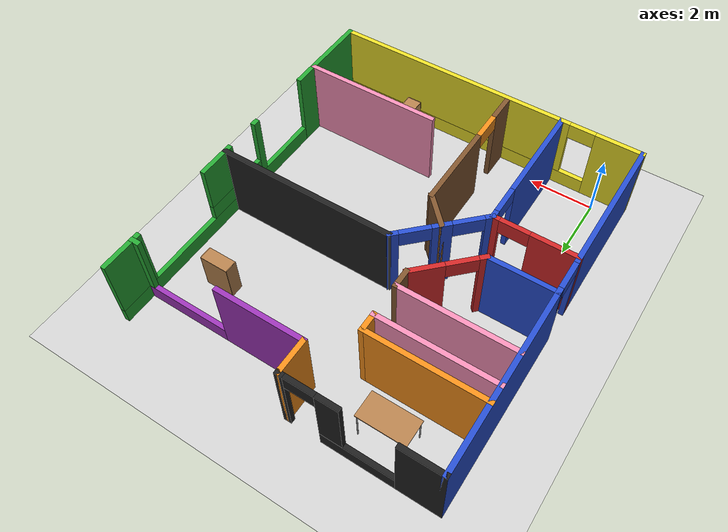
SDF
<sdf version="1.6">
 <world name="default">
  <light name="sun" type="directional">
   <pose>0 0 10 0 -0 0</pose>
   <diffuse>0.8 0.8 0.8 1</diffuse>
   <specular>0.2 0.2 0.2 1</specular>
   <attenuation>
    <range>1000</range>
    <constant>0.9</constant>
    <linear>0.01</linear>
    <quadratic>0.001</quadratic>
   </attenuation>
   <direction>-0.5 0.1 -0.9</direction>
  </light>
  <model name="ground_plane">
   <static>1</static>
   <link name="link">
    <collision name="collision">
     <geometry><plane><normal>0 0 1</normal><size>100 100</size></plane></geometry>
     <surface>
      <contact><collide_bitmask>65535</collide_bitmask></contact>
      <friction><ode><mu>100</mu><mu2>50</mu2></ode></friction>
     </surface>
    </collision>
    <visual name="visual">
     <cast_shadows>0</cast_shadows>
     <geometry><plane><normal>0 0 1</normal><size>100 100</size></plane></geometry>
     <material>
      <script><uri>file://media/materials/scripts/gazebo.material</uri><name>Gazebo/Grey</name></script>
     </material>
    </visual>
   </link>
  </model>
  <gravity>0 0 -9.8</gravity>
  <magnetic_field>6e-06 2.3e-05 -4.2e-05</magnetic_field>
  <atmosphere type="adiabatic"/>
  <physics name="default_physics" default="0" type="ode">
   <max_step_size>0.001</max_step_size>
   <real_time_factor>1</real_time_factor>
   <real_time_update_rate>1000</real_time_update_rate>
  </physics>
  <scene><ambient>0.4 0.4 0.4 1</ambient><background>0.7 0.7 0.7 1</background><shadows>1</shadows></scene>
  <audio><device>default</device></audio>
  <spherical_coordinates>
   <surface_model>EARTH_WGS84</surface_model>
   <latitude_deg>0</latitude_deg>
   <longitude_deg>0</longitude_deg>
   <elevation>0</elevation>
   <heading_deg>0</heading_deg>
  </spherical_coordinates>
  <model name="home">
   <pose>4.13777 5.03484 0 0 -0 0</pose>
   <link name="Wall_12">
    <pose>5 -0 0 0 -0 1.5708</pose>
    <visual name="Wall_12_Visual_0">
     <pose>-4.14478 0 1.25 0 -0 0</pose>
     <geometry><box><size>2.86043 0.15 2.5</size></box></geometry>
     <material>
      <script><uri>file://media/materials/scripts/gazebo.material</uri><name>Gazebo/Green</name></script>
      <ambient>0.921569 0.807843 0.615686 1</ambient>
     </material>
     <meta><layer>0</layer></meta>
    </visual>
    <collision name="Wall_12_Collision_0">
     <geometry><box><size>2.86043 0.15 2.5</size></box></geometry>
     <pose>-4.14478 0 1.25 0 -0 0</pose>
    </collision>
    <visual name="Wall_12_Visual_1">
     <pose>1.43022 0 0.25 0 -0 0</pose>
     <geometry><box><size>8.28957 0.15 0.5</size></box></geometry>
     <material>
      <script><uri>file://media/materials/scripts/gazebo.material</uri><name>Gazebo/Green</name></script>
      <ambient>0.921569 0.807843 0.615686 1</ambient>
     </material>
     <meta><layer>0</layer></meta>
    </visual>
    <collision name="Wall_12_Collision_1">
     <geometry><box><size>8.28957 0.15 0.5</size></box></geometry>
     <pose>1.43022 0 0.25 0 -0 0</pose>
    </collision>
    <visual name="Wall_12_Visual_2">
     <pose>-0.595004 0 1.5 0 -0 0</pose>
     <geometry><box><size>0.23913 0.15 2</size></box></geometry>
     <material>
      <script><uri>file://media/materials/scripts/gazebo.material</uri><name>Gazebo/Green</name></script>
      <ambient>0.921569 0.807843 0.615686 1</ambient>
     </material>
     <meta><layer>0</layer></meta>
    </visual>
    <collision name="Wall_12_Collision_2">
     <geometry><box><size>0.23913 0.15 2</size></box></geometry>
     <pose>-0.595004 0 1.5 0 -0 0</pose>
    </collision>
    <visual name="Wall_12_Visual_3">
     <pose>4.9125 0 1.5 0 -0 0</pose>
     <geometry><box><size>1.325 0.15 2</size></box></geometry>
     <material>
      <script><uri>file://media/materials/scripts/gazebo.material</uri><name>Gazebo/Green</name></script>
      <ambient>0.921569 0.807843 0.615686 1</ambient>
     </material>
     <meta><layer>0</layer></meta>
    </visual>
    <collision name="Wall_12_Collision_3">
     <geometry><box><size>1.325 0.15 2</size></box></geometry>
     <pose>4.9125 0 1.5 0 -0 0</pose>
    </collision>
    <visual name="Wall_12_Visual_4">
     <pose>0.637281 0 0.75 0 -0 0</pose>
     <geometry><box><size>2.22544 0.15 0.5</size></box></geometry>
     <material>
      <script><uri>file://media/materials/scripts/gazebo.material</uri><name>Gazebo/Green</name></script>
      <ambient>0.921569 0.807843 0.615686 1</ambient>
     </material>
     <meta><layer>0</layer></meta>
    </visual>
    <collision name="Wall_12_Collision_4">
     <geometry><box><size>2.22544 0.15 0.5</size></box></geometry>
     <pose>0.637281 0 0.75 0 -0 0</pose>
    </collision>
    <visual name="Wall_12_Visual_5">
     <pose>1.13728 0 1.75 0 -0 0</pose>
     <geometry><box><size>1.22544 0.15 1.5</size></box></geometry>
     <material>
      <script><uri>file://media/materials/scripts/gazebo.material</uri><name>Gazebo/Green</name></script>
      <ambient>0.921569 0.807843 0.615686 1</ambient>
     </material>
     <meta><layer>0</layer></meta>
    </visual>
    <collision name="Wall_12_Collision_5">
     <geometry><box><size>1.22544 0.15 1.5</size></box></geometry>
     <pose>1.13728 0 1.75 0 -0 0</pose>
    </collision>
   </link>
   <link name="Wall_14">
    <pose>-2.75 5.5 0 0 -0 0</pose>
    <visual name="Wall_14_Visual_0">
     <pose>-1.6625 0 1.25 0 -0 0</pose>
     <geometry><box><size>1.325 0.15 2.5</size></box></geometry>
     <material>
      <script><uri>file://media/materials/scripts/gazebo.material</uri><name>Gazebo/Black</name></script>
      <ambient>0.921569 0.807843 0.615686 1</ambient>
     </material>
     <meta><layer>0</layer></meta>
    </visual>
    <collision name="Wall_14_Collision_0">
     <geometry><box><size>1.325 0.15 2.5</size></box></geometry>
     <pose>-1.6625 0 1.25 0 -0 0</pose>
    </collision>
    <visual name="Wall_14_Visual_1">
     <pose>2.20662 0 1.25 0 -0 0</pose>
     <geometry><box><size>0.236762 0.15 2.5</size></box></geometry>
     <material>
      <script><uri>file://media/materials/scripts/gazebo.material</uri><name>Gazebo/Black</name></script>
      <ambient>0.921569 0.807843 0.615686 1</ambient>
     </material>
     <meta><layer>0</layer></meta>
    </visual>
    <collision name="Wall_14_Collision_1">
     <geometry><box><size>0.236762 0.15 2.5</size></box></geometry>
     <pose>2.20662 0 1.25 0 -0 0</pose>
    </collision>
    <visual name="Wall_14_Visual_2">
     <pose>0.094119 0 0.25 0 -0 0</pose>
     <geometry><box><size>2.18824 0.15 0.5</size></box></geometry>
     <material>
      <script><uri>file://media/materials/scripts/gazebo.material</uri><name>Gazebo/Black</name></script>
      <ambient>0.921569 0.807843 0.615686 1</ambient>
     </material>
     <meta><layer>0</layer></meta>
    </visual>
    <collision name="Wall_14_Collision_2">
     <geometry><box><size>2.18824 0.15 0.5</size></box></geometry>
     <pose>0.094119 0 0.25 0 -0 0</pose>
    </collision>
    <visual name="Wall_14_Visual_3">
     <pose>0.844119 0 1.5 0 -0 0</pose>
     <geometry><box><size>0.688238 0.15 2</size></box></geometry>
     <material>
      <script><uri>file://media/materials/scripts/gazebo.material</uri><name>Gazebo/Black</name></script>
      <ambient>0.921569 0.807843 0.615686 1</ambient>
     </material>
     <meta><layer>0</layer></meta>
    </visual>
    <collision name="Wall_14_Collision_3">
     <geometry><box><size>0.688238 0.15 2</size></box></geometry>
     <pose>0.844119 0 1.5 0 -0 0</pose>
    </collision>
    <visual name="Wall_14_Visual_4">
     <pose>1.63824 0 2.25 0 -0 0</pose>
     <geometry><box><size>0.9 0.15 0.5</size></box></geometry>
     <material>
      <script><uri>file://media/materials/scripts/gazebo.material</uri><name>Gazebo/Black</name></script>
      <ambient>0.921569 0.807843 0.615686 1</ambient>
     </material>
     <meta><layer>0</layer></meta>
    </visual>
    <collision name="Wall_14_Collision_4">
     <geometry><box><size>0.9 0.15 0.5</size></box></geometry>
     <pose>1.63824 0 2.25 0 -0 0</pose>
    </collision>
   </link>
   <link name="Wall_16">
    <pose>-0 -5.5 0 0 -0 0</pose>
    <visual name="Wall_16_Visual_0">
     <pose>-4.32369 0 1.25 0 -0 0</pose>
     <geometry><box><size>1.50261 0.15 2.5</size></box></geometry>
     <material>
      <script><uri>file://media/materials/scripts/gazebo.material</uri><name>Gazebo/Yellow</name></script>
      <ambient>0.921569 0.807843 0.615686 1</ambient>
     </material>
     <meta><layer>0</layer></meta>
    </visual>
    <collision name="Wall_16_Collision_0">
     <geometry><box><size>1.50261 0.15 2.5</size></box></geometry>
     <pose>-4.32369 0 1.25 0 -0 0</pose>
    </collision>
    <visual name="Wall_16_Visual_1">
     <pose>0.751305 0 0.25 0 -0 0</pose>
     <geometry><box><size>8.64739 0.15 0.5</size></box></geometry>
     <material>
      <script><uri>file://media/materials/scripts/gazebo.material</uri><name>Gazebo/Yellow</name></script>
      <ambient>0.921569 0.807843 0.615686 1</ambient>
     </material>
     <meta><layer>0</layer></meta>
    </visual>
    <collision name="Wall_16_Collision_1">
     <geometry><box><size>8.64739 0.15 0.5</size></box></geometry>
     <pose>0.751305 0 0.25 0 -0 0</pose>
    </collision>
    <visual name="Wall_16_Visual_2">
     <pose>1.15131 0 1.5 0 -0 0</pose>
     <geometry><box><size>7.84739 0.15 2</size></box></geometry>
     <material>
      <script><uri>file://media/materials/scripts/gazebo.material</uri><name>Gazebo/Yellow</name></script>
      <ambient>0.921569 0.807843 0.615686 1</ambient>
     </material>
     <meta><layer>0</layer></meta>
    </visual>
    <collision name="Wall_16_Collision_2">
     <geometry><box><size>7.84739 0.15 2</size></box></geometry>
     <pose>1.15131 0 1.5 0 -0 0</pose>
    </collision>
    <visual name="Wall_16_Visual_3">
     <pose>-3.17239 0 2.25 0 -0 0</pose>
     <geometry><box><size>0.8 0.15 0.5</size></box></geometry>
     <material>
      <script><uri>file://media/materials/scripts/gazebo.material</uri><name>Gazebo/Yellow</name></script>
      <ambient>0.921569 0.807843 0.615686 1</ambient>
     </material>
     <meta><layer>0</layer></meta>
    </visual>
    <collision name="Wall_16_Collision_3">
     <geometry><box><size>0.8 0.15 0.5</size></box></geometry>
     <pose>-3.17239 0 2.25 0 -0 0</pose>
    </collision>
   </link>
   <link name="Wall_18">
    <pose>-3.75 -1.25 0 0 -0 0</pose>
    <visual name="Wall_18_Visual_0">
     <pose>-0.588671 0 1.25 0 -0 0</pose>
     <geometry><box><size>1.47266 0.15 2.5</size></box></geometry>
     <material>
      <script><uri>file://media/materials/scripts/gazebo.material</uri><name>Gazebo/Red</name></script>
      <ambient>0.921569 0.807843 0.615686 1</ambient>
     </material>
     <meta><layer>0</layer></meta>
    </visual>
    <collision name="Wall_18_Collision_0">
     <geometry><box><size>1.47266 0.15 2.5</size></box></geometry>
     <pose>-0.588671 0 1.25 0 -0 0</pose>
    </collision>
    <visual name="Wall_18_Visual_1">
     <pose>1.18633 0 1.25 0 -0 0</pose>
     <geometry><box><size>0.277343 0.15 2.5</size></box></geometry>
     <material>
      <script><uri>file://media/materials/scripts/gazebo.material</uri><name>Gazebo/Red</name></script>
      <ambient>0.921569 0.807843 0.615686 1</ambient>
     </material>
     <meta><layer>0</layer></meta>
    </visual>
    <collision name="Wall_18_Collision_1">
     <geometry><box><size>0.277343 0.15 2.5</size></box></geometry>
     <pose>1.18633 0 1.25 0 -0 0</pose>
    </collision>
    <visual name="Wall_18_Visual_2">
     <pose>0.597657 0 2.25 0 -0 0</pose>
     <geometry><box><size>0.9 0.15 0.5</size></box></geometry>
     <material>
      <script><uri>file://media/materials/scripts/gazebo.material</uri><name>Gazebo/Red</name></script>
      <ambient>0.921569 0.807843 0.615686 1</ambient>
     </material>
     <meta><layer>0</layer></meta>
    </visual>
    <collision name="Wall_18_Collision_2">
     <geometry><box><size>0.9 0.15 0.5</size></box></geometry>
     <pose>0.597657 0 2.25 0 -0 0</pose>
    </collision>
   </link>
   <link name="Wall_20">
    <pose>-2.25 0.75 0 0 -0 0.785398</pose>
    <visual name="Wall_20_Visual_0">
     <pose>-0.994067 0 1.25 0 -0 0</pose>
     <geometry><box><size>0.283187 0.15 2.5</size></box></geometry>
     <material>
      <script><uri>file://media/materials/scripts/gazebo.material</uri><name>Gazebo/Red</name></script>
      <ambient>0.921569 0.807843 0.615686 1</ambient>
     </material>
     <meta><layer>0</layer></meta>
    </visual>
    <collision name="Wall_20_Collision_0">
     <geometry><box><size>0.283187 0.15 2.5</size></box></geometry>
     <pose>-0.994067 0 1.25 0 -0 0</pose>
    </collision>
    <visual name="Wall_20_Visual_1">
     <pose>0.591593 0 1.25 0 -0 0</pose>
     <geometry><box><size>1.08813 0.15 2.5</size></box></geometry>
     <material>
      <script><uri>file://media/materials/scripts/gazebo.material</uri><name>Gazebo/Red</name></script>
      <ambient>0.921569 0.807843 0.615686 1</ambient>
     </material>
     <meta><layer>0</layer></meta>
    </visual>
    <collision name="Wall_20_Collision_1">
     <geometry><box><size>1.08813 0.15 2.5</size></box></geometry>
     <pose>0.591593 0 1.25 0 -0 0</pose>
    </collision>
    <visual name="Wall_20_Visual_2">
     <pose>-0.402473 0 2.25 0 -0 0</pose>
     <geometry><box><size>0.9 0.15 0.5</size></box></geometry>
     <material>
      <script><uri>file://media/materials/scripts/gazebo.material</uri><name>Gazebo/Red</name></script>
      <ambient>0.921569 0.807843 0.615686 1</ambient>
     </material>
     <meta><layer>0</layer></meta>
    </visual>
    <collision name="Wall_20_Collision_2">
     <geometry><box><size>0.9 0.15 0.5</size></box></geometry>
     <pose>-0.402473 0 2.25 0 -0 0</pose>
    </collision>
   </link>
   <link name="Wall_22">
    <collision name="Wall_22_Collision">
     <geometry><box><size>2.15 0.15 2.5</size></box></geometry>
     <pose>0 0 1.25 0 -0 0</pose>
    </collision>
    <visual name="Wall_22_Visual">
     <pose>0 0 1.25 0 -0 0</pose>
     <geometry><box><size>2.15 0.15 2.5</size></box></geometry>
     <material>
      <script><uri>file://media/materials/scripts/gazebo.material</uri><name>Gazebo/Blue</name></script>
      <ambient>0.921569 0.807843 0.615686 1</ambient>
     </material>
     <meta><layer>0</layer></meta>
    </visual>
    <pose>-4 -0 0 0 -0 0</pose>
   </link>
   <link name="Wall_24">
    <pose>-2.5 -3.375 0 0 -0 -1.5708</pose>
    <visual name="Wall_24_Visual_0">
     <pose>-2.05418 0 1.25 0 -0 0</pose>
     <geometry><box><size>0.291638 0.15 2.5</size></box></geometry>
     <material>
      <script><uri>file://media/materials/scripts/gazebo.material</uri><name>Gazebo/Blue</name></script>
      <ambient>0.921569 0.807843 0.615686 1</ambient>
     </material>
     <meta><layer>0</layer></meta>
    </visual>
    <collision name="Wall_24_Collision_0">
     <geometry><box><size>0.291638 0.15 2.5</size></box></geometry>
     <pose>-2.05418 0 1.25 0 -0 0</pose>
    </collision>
    <visual name="Wall_24_Visual_1">
     <pose>0.595819 0 1.25 0 -0 0</pose>
     <geometry><box><size>3.20836 0.15 2.5</size></box></geometry>
     <material>
      <script><uri>file://media/materials/scripts/gazebo.material</uri><name>Gazebo/Blue</name></script>
      <ambient>0.921569 0.807843 0.615686 1</ambient>
     </material>
     <meta><layer>0</layer></meta>
    </visual>
    <collision name="Wall_24_Collision_1">
     <geometry><box><size>3.20836 0.15 2.5</size></box></geometry>
     <pose>0.595819 0 1.25 0 -0 0</pose>
    </collision>
    <visual name="Wall_24_Visual_2">
     <pose>-1.45836 0 2.25 0 -0 0</pose>
     <geometry><box><size>0.9 0.15 0.5</size></box></geometry>
     <material>
      <script><uri>file://media/materials/scripts/gazebo.material</uri><name>Gazebo/Blue</name></script>
      <ambient>0.921569 0.807843 0.615686 1</ambient>
     </material>
     <meta><layer>0</layer></meta>
    </visual>
    <collision name="Wall_24_Collision_2">
     <geometry><box><size>0.9 0.15 0.5</size></box></geometry>
     <pose>-1.45836 0 2.25 0 -0 0</pose>
    </collision>
   </link>
   <link name="Wall_26">
    <pose>-1.5 -0.25 0 0 -0 0.785398</pose>
    <visual name="Wall_26_Visual_0">
     <pose>-1.34261 0 1.25 0 -0 0</pose>
     <geometry><box><size>0.293202 0.15 2.5</size></box></geometry>
     <material>
      <script><uri>file://media/materials/scripts/gazebo.material</uri><name>Gazebo/Blue</name></script>
      <ambient>0.921569 0.807843 0.615686 1</ambient>
     </material>
     <meta><layer>0</layer></meta>
    </visual>
    <collision name="Wall_26_Collision_0">
     <geometry><box><size>0.293202 0.15 2.5</size></box></geometry>
     <pose>-1.34261 0 1.25 0 -0 0</pose>
    </collision>
    <visual name="Wall_26_Visual_1">
     <pose>-0.014156 0 1.25 0 -0 0</pose>
     <geometry><box><size>0.563711 0.15 2.5</size></box></geometry>
     <material>
      <script><uri>file://media/materials/scripts/gazebo.material</uri><name>Gazebo/Blue</name></script>
      <ambient>0.921569 0.807843 0.615686 1</ambient>
     </material>
     <meta><layer>0</layer></meta>
    </visual>
    <collision name="Wall_26_Collision_1">
     <geometry><box><size>0.563711 0.15 2.5</size></box></geometry>
     <pose>-0.014156 0 1.25 0 -0 0</pose>
    </collision>
    <visual name="Wall_26_Visual_2">
     <pose>1.32846 0 1.25 0 -0 0</pose>
     <geometry><box><size>0.321513 0.15 2.5</size></box></geometry>
     <material>
      <script><uri>file://media/materials/scripts/gazebo.material</uri><name>Gazebo/Blue</name></script>
      <ambient>0.921569 0.807843 0.615686 1</ambient>
     </material>
     <meta><layer>0</layer></meta>
    </visual>
    <collision name="Wall_26_Collision_2">
     <geometry><box><size>0.321513 0.15 2.5</size></box></geometry>
     <pose>1.32846 0 1.25 0 -0 0</pose>
    </collision>
    <visual name="Wall_26_Visual_3">
     <pose>-0.746011 0 2.25 0 -0 0</pose>
     <geometry><box><size>0.9 0.15 0.5</size></box></geometry>
     <material>
      <script><uri>file://media/materials/scripts/gazebo.material</uri><name>Gazebo/Blue</name></script>
      <ambient>0.921569 0.807843 0.615686 1</ambient>
     </material>
     <meta><layer>0</layer></meta>
    </visual>
    <collision name="Wall_26_Collision_3">
     <geometry><box><size>0.9 0.15 0.5</size></box></geometry>
     <pose>-0.746011 0 2.25 0 -0 0</pose>
    </collision>
    <visual name="Wall_26_Visual_4">
     <pose>0.7177 0 2.25 0 -0 0</pose>
     <geometry><box><size>0.9 0.15 0.5</size></box></geometry>
     <material>
      <script><uri>file://media/materials/scripts/gazebo.material</uri><name>Gazebo/Blue</name></script>
      <ambient>0.921569 0.807843 0.615686 1</ambient>
     </material>
     <meta><layer>0</layer></meta>
    </visual>
    <collision name="Wall_26_Collision_4">
     <geometry><box><size>0.9 0.15 0.5</size></box></geometry>
     <pose>0.7177 0 2.25 0 -0 0</pose>
    </collision>
   </link>
   <link name="Wall_28">
    <collision name="Wall_28_Collision">
     <geometry><box><size>1.21066 0.15 2.5</size></box></geometry>
     <pose>0 0 1.25 0 -0 0</pose>
    </collision>
    <visual name="Wall_28_Visual">
     <pose>0 0 1.25 0 -0 0</pose>
     <geometry><box><size>1.21066 0.15 2.5</size></box></geometry>
     <material>
      <script><uri>file://media/materials/scripts/gazebo.material</uri><name>Gazebo/Brown</name></script>
      <ambient>0.921569 0.807843 0.615686 1</ambient>
     </material>
     <meta><layer>0</layer></meta>
    </visual>
    <pose>-1.125 -0.625 0 0 -0 -0.785398</pose>
   </link>
   <link name="Wall_30">
    <pose>-0.75 -3.25 0 0 -0 -1.5708</pose>
    <visual name="Wall_30_Visual_0">
     <pose>-0.959381 0 1.25 0 -0 0</pose>
     <geometry><box><size>2.73124 0.15 2.5</size></box></geometry>
     <material>
      <script><uri>file://media/materials/scripts/gazebo.material</uri><name>Gazebo/Brown</name></script>
      <ambient>0.921569 0.807843 0.615686 1</ambient>
     </material>
     <meta><layer>0</layer></meta>
    </visual>
    <collision name="Wall_30_Collision_0">
     <geometry><box><size>2.73124 0.15 2.5</size></box></geometry>
     <pose>-0.959381 0 1.25 0 -0 0</pose>
    </collision>
    <visual name="Wall_30_Visual_1">
     <pose>1.81562 0 1.25 0 -0 0</pose>
     <geometry><box><size>1.01876 0.15 2.5</size></box></geometry>
     <material>
      <script><uri>file://media/materials/scripts/gazebo.material</uri><name>Gazebo/Brown</name></script>
      <ambient>0.921569 0.807843 0.615686 1</ambient>
     </material>
     <meta><layer>0</layer></meta>
    </visual>
    <collision name="Wall_30_Collision_1">
     <geometry><box><size>1.01876 0.15 2.5</size></box></geometry>
     <pose>1.81562 0 1.25 0 -0 0</pose>
    </collision>
    <visual name="Wall_30_Visual_2">
     <pose>0.856238 0 2.25 0 -0 0</pose>
     <geometry><box><size>0.9 0.15 0.5</size></box></geometry>
     <material>
      <script><uri>file://media/materials/scripts/gazebo.material</uri><name>Gazebo/Orange</name></script>
      <ambient>0.921569 0.807843 0.615686 1</ambient>
     </material>
     <meta><layer>0</layer></meta>
    </visual>
    <collision name="Wall_30_Collision_2">
     <geometry><box><size>0.9 0.15 0.5</size></box></geometry>
     <pose>0.856238 0 2.25 0 -0 0</pose>
    </collision>
   </link>
   <link name="Wall_32">
    <collision name="Wall_32_Collision">
     <geometry><box><size>5.65 0.15 2.5</size></box></geometry>
     <pose>0 0 1.25 0 -0 0</pose>
    </collision>
    <visual name="Wall_32_Visual">
     <pose>0 0 1.25 0 -0 0</pose>
     <geometry><box><size>5.65 0.15 2.5</size></box></geometry>
     <material>
      <script><uri>file://media/materials/scripts/gazebo.material</uri><name>Gazebo/Black</name></script>
      <ambient>0.921569 0.807843 0.615686 1</ambient>
     </material>
     <meta><layer>0</layer></meta>
    </visual>
    <pose>2.25 0.75 0 0 -0 0</pose>
   </link>
   <link name="Wall_35">
    <collision name="Wall_35_Collision">
     <geometry><box><size>4.4 0.15 2.5</size></box></geometry>
     <pose>0 0 1.25 0 -0 0</pose>
    </collision>
    <visual name="Wall_35_Visual">
     <pose>0 0 1.25 0 -0 0</pose>
     <geometry><box><size>4.4 0.15 2.5</size></box></geometry>
     <material>
      <script><uri>file://media/materials/scripts/gazebo.material</uri><name>Gazebo/Pink</name></script>
      <ambient>0.921569 0.807843 0.615686 1</ambient>
     </material>
     <meta><layer>0</layer></meta>
    </visual>
    <pose>2.875 -3.5 0 0 -0 0</pose>
   </link>
   <link name="Wall_37">
    <collision name="Wall_37_Collision">
     <geometry><box><size>0.65 0.15 2.5</size></box></geometry>
     <pose>0 0 1.25 0 -0 0</pose>
    </collision>
    <visual name="Wall_37_Visual">
     <pose>0 0 1.25 0 -0 0</pose>
     <geometry><box><size>0.65 0.15 2.5</size></box></geometry>
     <material>
      <script><uri>file://media/materials/scripts/gazebo.material</uri><name>Gazebo/Brown</name></script>
      <ambient>0.921569 0.807843 0.615686 1</ambient>
     </material>
     <meta><layer>0</layer></meta>
    </visual>
    <pose>-1.5 1.75 0 0 -0 1.5708</pose>
   </link>
   <link name="Wall_41">
    <collision name="Wall_41_Collision">
     <geometry><box><size>3.65 0.15 2.5</size></box></geometry>
     <pose>0 0 1.25 0 -0 0</pose>
    </collision>
    <visual name="Wall_41_Visual">
     <pose>0 0 1.25 0 -0 0</pose>
     <geometry><box><size>3.65 0.15 2.5</size></box></geometry>
     <material>
      <script><uri>file://media/materials/scripts/gazebo.material</uri><name>Gazebo/Pink</name></script>
      <ambient>0.921569 0.807843 0.615686 1</ambient>
     </material>
     <meta><layer>0</layer></meta>
    </visual>
    <pose>-3.25 2 0 0 -0 3.14159</pose>
   </link>
   <link name="Wall_43">
    <collision name="Wall_43_Collision">
     <geometry><box><size>3.65 0.15 2.5</size></box></geometry>
     <pose>0 0 1.25 0 -0 0</pose>
    </collision>
    <visual name="Wall_43_Visual">
     <pose>0 0 1.25 0 -0 0</pose>
     <geometry><box><size>3.65 0.15 2.5</size></box></geometry>
     <material>
      <script><uri>file://media/materials/scripts/gazebo.material</uri><name>Gazebo/Pink</name></script>
      <ambient>0.921569 0.807843 0.615686 1</ambient>
     </material>
     <meta><layer>0</layer></meta>
    </visual>
    <pose>-3.25 3 0 0 -0 0</pose>
   </link>
   <link name="Wall_45">
    <collision name="Wall_45_Collision">
     <geometry><box><size>0.65 0.15 2.5</size></box></geometry>
     <pose>0 0 1.25 0 -0 0</pose>
    </collision>
    <visual name="Wall_45_Visual">
     <pose>0 0 1.25 0 -0 0</pose>
     <geometry><box><size>0.65 0.15 2.5</size></box></geometry>
     <material>
      <script><uri>file://media/materials/scripts/gazebo.material</uri><name>Gazebo/Orange</name></script>
      <ambient>0.921569 0.807843 0.615686 1</ambient>
     </material>
     <meta><layer>0</layer></meta>
    </visual>
    <pose>-1.5 3.25 0 0 -0 1.5708</pose>
   </link>
   <link name="Wall_47">
    <collision name="Wall_47_Collision">
     <geometry><box><size>3.65 0.15 2.5</size></box></geometry>
     <pose>0 0 1.25 0 -0 0</pose>
    </collision>
    <visual name="Wall_47_Visual">
     <pose>0 0 1.25 0 -0 0</pose>
     <geometry><box><size>3.65 0.15 2.5</size></box></geometry>
     <material>
      <script><uri>file://media/materials/scripts/gazebo.material</uri><name>Gazebo/Orange</name></script>
      <ambient>0.921569 0.807843 0.615686 1</ambient>
     </material>
     <meta><layer>0</layer></meta>
    </visual>
    <pose>-3.25 3.5 0 0 -0 3.14159</pose>
   </link>
   <link name="Wall_49">
    <collision name="Wall_49_Collision">
     <geometry><box><size>1.15 0.15 2.5</size></box></geometry>
     <pose>0 0 1.25 0 -0 0</pose>
    </collision>
    <visual name="Wall_49_Visual">
     <pose>0 0 1.25 0 -0 0</pose>
     <geometry><box><size>1.15 0.15 2.5</size></box></geometry>
     <material>
      <script><uri>file://media/materials/scripts/gazebo.material</uri><name>Gazebo/Orange</name></script>
      <ambient>0.921569 0.807843 0.615686 1</ambient>
     </material>
     <meta><layer>0</layer></meta>
    </visual>
    <pose>-0.5 5 0 0 -0 -1.5708</pose>
   </link>
   <link name="Wall_51">
    <pose>2.25 4.5 0 0 -0 0</pose>
    <visual name="Wall_51_Visual_0">
     <pose>-1.4125 0 1.25 0 -0 0</pose>
     <geometry><box><size>2.825 0.15 2.5</size></box></geometry>
     <material>
      <script><uri>file://media/materials/scripts/gazebo.material</uri><name>Gazebo/Purple</name></script>
      <ambient>0.921569 0.807843 0.615686 1</ambient>
     </material>
     <meta><layer>0</layer></meta>
    </visual>
    <collision name="Wall_51_Collision_0">
     <geometry><box><size>2.825 0.15 2.5</size></box></geometry>
     <pose>-1.4125 0 1.25 0 -0 0</pose>
    </collision>
    <visual name="Wall_51_Visual_1">
     <pose>1.4125 0 0.25 0 -0 0</pose>
     <geometry><box><size>2.825 0.15 0.5</size></box></geometry>
     <material>
      <script><uri>file://media/materials/scripts/gazebo.material</uri><name>Gazebo/Purple</name></script>
      <ambient>0.921569 0.807843 0.615686 1</ambient>
     </material>
     <meta><layer>0</layer></meta>
    </visual>
    <collision name="Wall_51_Collision_1">
     <geometry><box><size>2.825 0.15 0.5</size></box></geometry>
     <pose>1.4125 0 0.25 0 -0 0</pose>
    </collision>
    <visual name="Wall_51_Visual_2">
     <pose>2.6625 0 1.5 0 -0 0</pose>
     <geometry><box><size>0.325 0.15 2</size></box></geometry>
     <material>
      <script><uri>file://media/materials/scripts/gazebo.material</uri><name>Gazebo/Green</name></script>
      <ambient>0.921569 0.807843 0.615686 1</ambient>
     </material>
     <meta><layer>0</layer></meta>
    </visual>
    <collision name="Wall_51_Collision_2">
     <geometry><box><size>0.325 0.15 2</size></box></geometry>
     <pose>2.6625 0 1.5 0 -0 0</pose>
    </collision>
   </link>
   <link name="Wall_8">
    <pose>-5 -0 0 0 -0 1.5708</pose>
    <visual name="Wall_8_Visual_0">
     <pose>-3.31669 0 1.25 0 -0 0</pose>
     <geometry><box><size>4.51662 0.15 2.5</size></box></geometry>
     <material>
      <script><uri>file://media/materials/scripts/gazebo.material</uri><name>Gazebo/Blue</name></script>
      <ambient>0.921569 0.807843 0.615686 1</ambient>
     </material>
     <meta><layer>0</layer></meta>
    </visual>
    <collision name="Wall_8_Collision_0">
     <geometry><box><size>4.51662 0.15 2.5</size></box></geometry>
     <pose>-3.31669 0 1.25 0 -0 0</pose>
    </collision>
    <visual name="Wall_8_Visual_1">
     <pose>2.70831 0 1.25 0 -0 0</pose>
     <geometry><box><size>5.73338 0.15 2.5</size></box></geometry>
     <material>
      <script><uri>file://media/materials/scripts/gazebo.material</uri><name>Gazebo/Blue</name></script>
      <ambient>0.921569 0.807843 0.615686 1</ambient>
     </material>
     <meta><layer>0</layer></meta>
    </visual>
    <collision name="Wall_8_Collision_1">
     <geometry><box><size>5.73338 0.15 2.5</size></box></geometry>
     <pose>2.70831 0 1.25 0 -0 0</pose>
    </collision>
    <visual name="Wall_8_Visual_2">
     <pose>-0.608377 0 2.25 0 -0 0</pose>
     <geometry><box><size>0.9 0.15 0.5</size></box></geometry>
     <material>
      <script><uri>file://media/materials/scripts/gazebo.material</uri><name>Gazebo/Blue</name></script>
      <ambient>0.921569 0.807843 0.615686 1</ambient>
     </material>
     <meta><layer>0</layer></meta>
    </visual>
    <collision name="Wall_8_Collision_2">
     <geometry><box><size>0.9 0.15 0.5</size></box></geometry>
     <pose>-0.608377 0 2.25 0 -0 0</pose>
    </collision>
   </link>
   <static>1</static>
  </model>
  <model name="table">
   <static>1</static>
   <link name="link">
    <collision name="surface">
     <pose>0 0 1 0 -0 0</pose>
     <geometry><box><size>1.5 0.8 0.03</size></box></geometry>
     <surface><friction><ode><mu>0.6</mu><mu2>0.6</mu2></ode></friction></surface>
    </collision>
    <visual name="visual1">
     <pose>0 0 1 0 -0 0</pose>
     <geometry><box><size>1.5 0.8 0.03</size></box></geometry>
     <material>
      <script><uri>file://media/materials/scripts/gazebo.material</uri><name>Gazebo/Wood</name></script>
     </material>
    </visual>
    <collision name="front_left_leg">
     <pose>0.68 0.38 0.5 0 -0 0</pose>
     <geometry><cylinder><radius>0.02</radius><length>1</length></cylinder></geometry>
    </collision>
    <visual name="front_left_leg">
     <pose>0.68 0.38 0.5 0 -0 0</pose>
     <geometry><cylinder><radius>0.02</radius><length>1</length></cylinder></geometry>
     <material>
      <script><uri>file://media/materials/scripts/gazebo.material</uri><name>Gazebo/Grey</name></script>
     </material>
    </visual>
    <collision name="front_right_leg">
     <pose>0.68 -0.38 0.5 0 -0 0</pose>
     <geometry><cylinder><radius>0.02</radius><length>1</length></cylinder></geometry>
    </collision>
    <visual name="front_right_leg">
     <pose>0.68 -0.38 0.5 0 -0 0</pose>
     <geometry><cylinder><radius>0.02</radius><length>1</length></cylinder></geometry>
     <material>
      <script><uri>file://media/materials/scripts/gazebo.material</uri><name>Gazebo/Grey</name></script>
     </material>
    </visual>
    <collision name="back_right_leg">
     <pose>-0.68 -0.38 0.5 0 -0 0</pose>
     <geometry><cylinder><radius>0.02</radius><length>1</length></cylinder></geometry>
    </collision>
    <visual name="back_right_leg">
     <pose>-0.68 -0.38 0.5 0 -0 0</pose>
     <geometry><cylinder><radius>0.02</radius><length>1</length></cylinder></geometry>
     <material>
      <script><uri>file://media/materials/scripts/gazebo.material</uri><name>Gazebo/Grey</name></script>
     </material>
    </visual>
    <collision name="back_left_leg">
     <pose>-0.68 0.38 0.5 0 -0 0</pose>
     <geometry><cylinder><radius>0.02</radius><length>1</length></cylinder></geometry>
    </collision>
    <visual name="back_left_leg">
     <pose>-0.68 0.38 0.5 0 -0 0</pose>
     <geometry><cylinder><radius>0.02</radius><length>1</length></cylinder></geometry>
     <material>
      <script><uri>file://media/materials/scripts/gazebo.material</uri><name>Gazebo/Grey</name></script>
     </material>
    </visual>
   </link>
   <pose>1.22851 9.54638 0 0 -0 0</pose>
  </model>
  <model name="bookshelf">
   <static>1</static>
   <link name="link">
    <inertial><mass>1</mass></inertial>
    <collision name="back">
     <pose>0 0.005 0.6 0 -0 0</pose>
     <geometry><box><size>0.9 0.01 1.2</size></box></geometry>
    </collision>
    <visual name="visual1">
     <pose>0 0.005 0.6 0 -0 0</pose>
     <geometry><box><size>0.9 0.01 1.2</size></box></geometry>
     <material>
      <script><uri>file://media/materials/scripts/gazebo.material</uri><name>Gazebo/Wood</name></script>
     </material>
    </visual>
    <collision name="left_side">
     <pose>0.45 -0.195 0.6 0 -0 0</pose>
     <geometry><box><size>0.02 0.4 1.2</size></box></geometry>
    </collision>
    <visual name="visual2">
     <pose>0.45 -0.195 0.6 0 -0 0</pose>
     <geometry><box><size>0.02 0.4 1.2</size></box></geometry>
     <material>
      <script><uri>file://media/materials/scripts/gazebo.material</uri><name>Gazebo/Wood</name></script>
     </material>
    </visual>
    <collision name="right_side">
     <pose>-0.45 -0.195 0.6 0 -0 0</pose>
     <geometry><box><size>0.02 0.4 1.2</size></box></geometry>
    </collision>
    <visual name="visual3">
     <pose>-0.45 -0.195 0.6 0 -0 0</pose>
     <geometry><box><size>0.02 0.4 1.2</size></box></geometry>
     <material>
      <script><uri>file://media/materials/scripts/gazebo.material</uri><name>Gazebo/Wood</name></script>
     </material>
    </visual>
    <collision name="bottom">
     <pose>0 -0.195 0.03 0 -0 0</pose>
     <geometry><box><size>0.88 0.4 0.06</size></box></geometry>
    </collision>
    <visual name="visual4">
     <pose>0 -0.195 0.03 0 -0 0</pose>
     <geometry><box><size>0.88 0.4 0.06</size></box></geometry>
     <material>
      <script><uri>file://media/materials/scripts/gazebo.material</uri><name>Gazebo/Wood</name></script>
     </material>
    </visual>
    <collision name="top">
     <pose>0 -0.195 1.19 0 -0 0</pose>
     <geometry><box><size>0.88 0.4 0.02</size></box></geometry>
    </collision>
    <visual name="visual5">
     <pose>0 -0.195 1.19 0 -0 0</pose>
     <geometry><box><size>0.88 0.4 0.02</size></box></geometry>
     <material>
      <script><uri>file://media/materials/scripts/gazebo.material</uri><name>Gazebo/Wood</name></script>
     </material>
    </visual>
    <collision name="low_shelf">
     <pose>0 -0.195 0.43 0 -0 0</pose>
     <geometry><box><size>0.88 0.4 0.02</size></box></geometry>
    </collision>
    <visual name="visual6">
     <pose>0 -0.195 0.43 0 -0 0</pose>
     <geometry><box><size>0.88 0.4 0.02</size></box></geometry>
     <material>
      <script><uri>file://media/materials/scripts/gazebo.material</uri><name>Gazebo/Wood</name></script>
     </material>
    </visual>
    <collision name="high_shelf">
     <pose>0 -0.195 0.8 0 -0 0</pose>
     <geometry><box><size>0.88 0.4 0.02</size></box></geometry>
    </collision>
    <visual name="visual7">
     <pose>0 -0.195 0.8 0 -0 0</pose>
     <geometry><box><size>0.88 0.4 0.02</size></box></geometry>
     <material>
      <script><uri>file://media/materials/scripts/gazebo.material</uri><name>Gazebo/Wood</name></script>
     </material>
    </visual>
   </link>
   <pose>7.63784 8.4253 0 0 -0 0</pose>
  </model>
  <plugin name="collision_map_creator" filename="libcollision_map_creator.so"/>
  <model name="cabinet">
   <static>1</static>
   <link name="cabinet_bottom_plate">
    <inertial>
     <pose>0 0 -1 0 -0 0</pose>
     <inertia><ixx>2.05</ixx><ixy>0</ixy><ixz>0</ixz><iyy>2.05</iyy><iyz>0</iyz><izz>2.05</izz></inertia>
     <mass>25</mass>
    </inertial>
    <collision name="cabinet_bottom_plate_geom">
     <pose>0 0 0.01 0 -0 0</pose>
     <geometry><box><size>0.45 0.45 0.02</size></box></geometry>
    </collision>
    <visual name="cabinet_bottom_plate_geom_visual">
     <pose>0 0 0.01 0 -0 0</pose>
     <geometry><box><size>0.45 0.45 0.02</size></box></geometry>
     <material>
      <script><uri>file://media/materials/scripts/gazebo.material</uri><name>Gazebo/Wood</name></script>
     </material>
    </visual>
    <collision name="cabinet_bottom_plate_geom_cabinet_back_plate">
     <pose>0.235 0 0.51 0 -0 0</pose>
     <geometry><box><size>0.02 0.45 1.02</size></box></geometry>
    </collision>
    <visual name="cabinet_bottom_plate_geom_cabinet_back_plate_visual">
     <pose>0.235 0 0.51 0 -0 0</pose>
     <geometry><box><size>0.02 0.45 1.02</size></box></geometry>
     <material>
      <script><uri>file://media/materials/scripts/gazebo.material</uri><name>Gazebo/Wood</name></script>
     </material>
    </visual>
    <collision name="cabinet_bottom_plate_geom_cabinet_left_plate">
     <pose>0 0.235 0.51 0 -0 0</pose>
     <geometry><box><size>0.45 0.02 1.02</size></box></geometry>
    </collision>
    <visual name="cabinet_bottom_plate_geom_cabinet_left_plate_visual">
     <pose>0 0.235 0.51 0 -0 0</pose>
     <geometry><box><size>0.45 0.02 1.02</size></box></geometry>
     <material>
      <script><uri>file://media/materials/scripts/gazebo.material</uri><name>Gazebo/Wood</name></script>
     </material>
    </visual>
    <collision name="cabinet_bottom_plate_geom_cabinet_middle_plate">
     <pose>0 0 0.51 0 -0 0</pose>
     <geometry><box><size>0.45 0.45 0.02</size></box></geometry>
    </collision>
    <visual name="cabinet_bottom_plate_geom_cabinet_middle_plate_visual">
     <pose>0 0 0.51 0 -0 0</pose>
     <geometry><box><size>0.45 0.45 0.02</size></box></geometry>
     <material>
      <script><uri>file://media/materials/scripts/gazebo.material</uri><name>Gazebo/Wood</name></script>
     </material>
    </visual>
    <collision name="cabinet_bottom_plate_geom_cabinet_right_plate">
     <pose>0 -0.235 0.51 0 -0 0</pose>
     <geometry><box><size>0.45 0.02 1.02</size></box></geometry>
    </collision>
    <visual name="cabinet_bottom_plate_geom_cabinet_right_plate_visual">
     <pose>0 -0.235 0.51 0 -0 0</pose>
     <geometry><box><size>0.45 0.02 1.02</size></box></geometry>
     <material>
      <script><uri>file://media/materials/scripts/gazebo.material</uri><name>Gazebo/Wood</name></script>
     </material>
    </visual>
    <collision name="cabinet_bottom_plate_geom_cabinet_top_plate">
     <pose>0 0 1.01 0 -0 0</pose>
     <geometry><box><size>0.45 0.45 0.02</size></box></geometry>
    </collision>
    <visual name="cabinet_bottom_plate_geom_cabinet_top_plate_visual">
     <pose>0 0 1.01 0 -0 0</pose>
     <geometry><box><size>0.45 0.45 0.02</size></box></geometry>
     <material>
      <script><uri>file://media/materials/scripts/gazebo.material</uri><name>Gazebo/Wood</name></script>
     </material>
    </visual>
   </link>
   <pose>6.49398 0.001996 0 0 -0 0</pose>
  </model>
  <light name="user_point_light_1" type="point">
   <pose>7.21813 7.58866 1 0 -0 0</pose>
   <diffuse>0.5 0.5 0.5 1</diffuse>
   <specular>0.1 0.1 0.1 1</specular>
   <attenuation>
    <range>20</range>
    <constant>0.5</constant>
    <linear>0.01</linear>
    <quadratic>0.001</quadratic>
   </attenuation>
   <cast_shadows>0</cast_shadows>
   <direction>0 0 -1</direction>
  </light>
  <light name="user_point_light_3" type="point">
   <pose>1.43351 1.67956 1 0 -0 0</pose>
   <diffuse>0.5 0.5 0.5 1</diffuse>
   <specular>0.1 0.1 0.1 1</specular>
   <attenuation>
    <range>20</range>
    <constant>0.5</constant>
    <linear>0.01</linear>
    <quadratic>0.001</quadratic>
   </attenuation>
   <cast_shadows>0</cast_shadows>
   <direction>0 0 -1</direction>
  </light>
  <plugin filename="libcollision_map_creator.so" name="collision_map_creator"/>
 </world>
</sdf>
